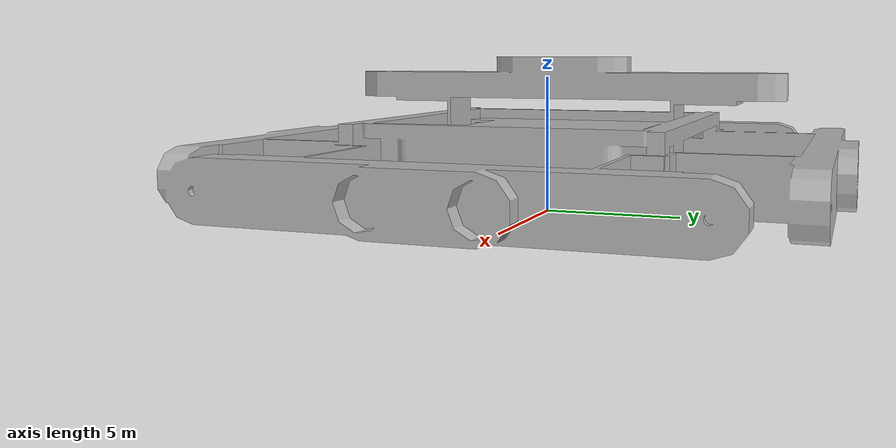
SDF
<?xml version="1.0" ?>
<sdf version="1.4">
  <model name="guidance">
    <pose>0 0 0 0 0 0</pose>
    <static>true</static>
    <link name="link">
      <visual name="visual">
        <geometry>
          <mesh>
            <uri>file:///home/tbm/temp/test_models/models/guidance/meshes/Assembly1_2.stl</uri>
          </mesh>
				</geometry>
      </visual>
    </link>
  </model>
</sdf>
